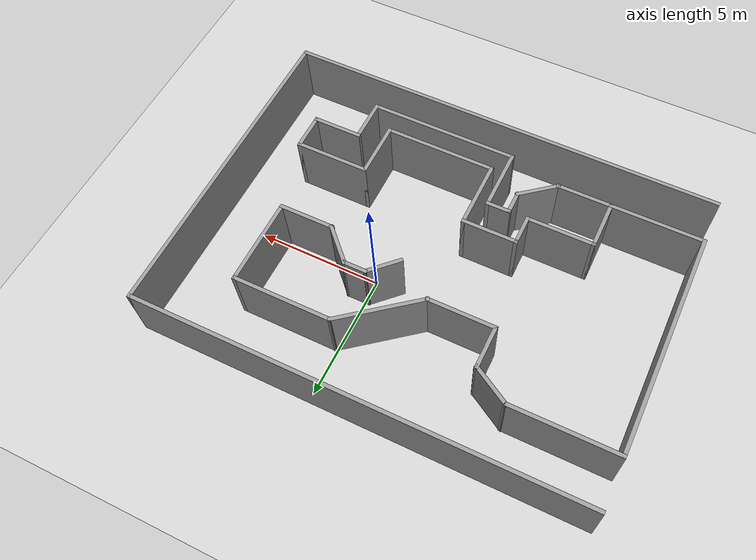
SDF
<?xml version="1.0"?>
<sdf version="1.4">
  <world name="default">

    <gui fullscreen='0'>
      <camera name='user_camera'>
        <pose frame=''>-0.812762 -1.95759 33.0329 0 1.5578 -4.4e-05</pose>
        <view_controller>orbit</view_controller>
        <projection_type>perspective</projection_type>
      </camera>
    </gui>

    <include>
      <uri>model://ground_plane</uri>
    </include>

    <include>
      <uri>model://sun</uri>
    </include>

    <include>
	<static>true</static>
	<name>a_maze_ing</name>
        <uri>model://maze</uri>
    </include>

  </world>
</sdf>

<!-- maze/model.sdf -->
<sdf version='1.6'>
  <model name='world'>
    <pose frame=''>-1.90915 -1.00587 0 0 -0 0</pose>
    <link name='Wall_101'>
      <collision name='Wall_101_Collision'>
        <geometry>
          <box>
            <size>3.6251 0.15 2.5</size>
          </box>
        </geometry>
        <pose frame=''>0 0 1.25 0 -0 0</pose>
      </collision>
      <visual name='Wall_101_Visual'>
        <pose frame=''>0 0 1.25 0 -0 0</pose>
        <geometry>
          <box>
            <size>3.6251 0.15 2.5</size>
          </box>
        </geometry>
        <material>
          <script>
            <uri>file://media/materials/scripts/gazebo.material</uri>
            <name>Gazebo/Grey</name>
          </script>
          <ambient>1 1 1 1</ambient>
        </material>
        <meta>
          <layer>0</layer>
        </meta>
      </visual>
      <pose frame=''>0.65218 3.02248 0 0 -0 0.671324</pose>
    </link>
    <link name='Wall_103'>
      <collision name='Wall_103_Collision'>
        <geometry>
          <box>
            <size>1.75 0.15 2.5</size>
          </box>
        </geometry>
        <pose frame=''>0 0 1.25 0 -0 0</pose>
      </collision>
      <visual name='Wall_103_Visual'>
        <pose frame=''>0 0 1.25 0 -0 0</pose>
        <geometry>
          <box>
            <size>1.75 0.15 2.5</size>
          </box>
        </geometry>
        <material>
          <script>
            <uri>file://media/materials/scripts/gazebo.material</uri>
            <name>Gazebo/Grey</name>
          </script>
          <ambient>1 1 1 1</ambient>
        </material>
        <meta>
          <layer>0</layer>
        </meta>
      </visual>
      <pose frame=''>3.19699 1.31897 0 0 -0 2.35619</pose>
    </link>
    <link name='Wall_104'>
      <collision name='Wall_104_Collision'>
        <geometry>
          <box>
            <size>1 0.15 2.5</size>
          </box>
        </geometry>
        <pose frame=''>0 0 1.25 0 -0 0</pose>
      </collision>
      <visual name='Wall_104_Visual'>
        <pose frame=''>0 0 1.25 0 -0 0</pose>
        <geometry>
          <box>
            <size>1 0.15 2.5</size>
          </box>
        </geometry>
        <material>
          <script>
            <uri>file://media/materials/scripts/gazebo.material</uri>
            <name>Gazebo/Grey</name>
          </script>
          <ambient>1 1 1 1</ambient>
        </material>
        <meta>
          <layer>0</layer>
        </meta>
      </visual>
      <pose frame=''>2.20631 1.88465 0 0 -0 3.14159</pose>
    </link>
    <link name='Wall_105'>
      <collision name='Wall_105_Collision'>
        <geometry>
          <box>
            <size>1.5 0.15 2.5</size>
          </box>
        </geometry>
        <pose frame=''>0 0 1.25 0 -0 0</pose>
      </collision>
      <visual name='Wall_105_Visual'>
        <pose frame=''>0 0 1.25 0 -0 0</pose>
        <geometry>
          <box>
            <size>1.5 0.15 2.5</size>
          </box>
        </geometry>
        <material>
          <script>
            <uri>file://media/materials/scripts/gazebo.material</uri>
            <name>Gazebo/Grey</name>
          </script>
          <ambient>1 1 1 1</ambient>
        </material>
        <meta>
          <layer>0</layer>
        </meta>
      </visual>
      <pose frame=''>1.30401 1.40735 0 0 0 -2.35619</pose>
    </link>
    <link name='Wall_35'>
      <collision name='Wall_35_Collision'>
        <geometry>
          <box>
            <size>17.75 0.15 2.5</size>
          </box>
        </geometry>
        <pose frame=''>0 0 1.25 0 -0 0</pose>
      </collision>
      <visual name='Wall_35_Visual'>
        <pose frame=''>0 0 1.25 0 -0 0</pose>
        <geometry>
          <box>
            <size>17.75 0.15 2.5</size>
          </box>
        </geometry>
        <material>
          <script>
            <uri>file://media/materials/scripts/gazebo.material</uri>
            <name>Gazebo/Grey</name>
          </script>
          <ambient>1 1 1 1</ambient>
        </material>
        <meta>
          <layer>0</layer>
        </meta>
      </visual>
      <pose frame=''>0.010591 6.3 0 0 -0 0</pose>
    </link>
    <link name='Wall_36'>
      <collision name='Wall_36_Collision'>
        <geometry>
          <box>
            <size>12.75 0.15 2.5</size>
          </box>
        </geometry>
        <pose frame=''>0 0 1.25 0 -0 0</pose>
      </collision>
      <visual name='Wall_36_Visual'>
        <pose frame=''>0 0 1.25 0 -0 0</pose>
        <geometry>
          <box>
            <size>12.75 0.15 2.5</size>
          </box>
        </geometry>
        <material>
          <script>
            <uri>file://media/materials/scripts/gazebo.material</uri>
            <name>Gazebo/Grey</name>
          </script>
          <ambient>1 1 1 1</ambient>
        </material>
        <meta>
          <layer>0</layer>
        </meta>
      </visual>
      <pose frame=''>8.81059 0 0 0 0 -1.5708</pose>
    </link>
    <link name='Wall_37'>
      <collision name='Wall_37_Collision'>
        <geometry>
          <box>
            <size>17.75 0.15 2.5</size>
          </box>
        </geometry>
        <pose frame=''>0 0 1.25 0 -0 0</pose>
      </collision>
      <visual name='Wall_37_Visual'>
        <pose frame=''>0 0 1.25 0 -0 0</pose>
        <geometry>
          <box>
            <size>17.75 0.15 2.5</size>
          </box>
        </geometry>
        <material>
          <script>
            <uri>file://media/materials/scripts/gazebo.material</uri>
            <name>Gazebo/Grey</name>
          </script>
          <ambient>1 1 1 1</ambient>
        </material>
        <meta>
          <layer>0</layer>
        </meta>
      </visual>
      <pose frame=''>0.010591 -6.3 0 0 -0 3.14159</pose>
    </link>
    <link name='Wall_47'>
      <collision name='Wall_47_Collision'>
        <geometry>
          <box>
            <size>4 0.15 2.5</size>
          </box>
        </geometry>
        <pose frame=''>0 0 1.25 0 -0 0</pose>
      </collision>
      <visual name='Wall_47_Visual'>
        <pose frame=''>0 0 1.25 0 -0 0</pose>
        <geometry>
          <box>
            <size>4 0.15 2.5</size>
          </box>
        </geometry>
        <material>
          <script>
            <uri>file://media/materials/scripts/gazebo.material</uri>
            <name>Gazebo/Grey</name>
          </script>
          <ambient>1 1 1 1</ambient>
        </material>
        <meta>
          <layer>0</layer>
        </meta>
      </visual>
      <pose frame=''>3.93768 4.10328 0 0 -0 0</pose>
    </link>
    <link name='Wall_53'>
      <collision name='Wall_53_Collision'>
        <geometry>
          <box>
            <size>3.5 0.15 2.5</size>
          </box>
        </geometry>
        <pose frame=''>0 0 1.25 0 -0 0</pose>
      </collision>
      <visual name='Wall_53_Visual'>
        <pose frame=''>0 0 1.25 0 -0 0</pose>
        <geometry>
          <box>
            <size>3.5 0.15 2.5</size>
          </box>
        </geometry>
        <material>
          <script>
            <uri>file://media/materials/scripts/gazebo.material</uri>
            <name>Gazebo/Grey</name>
          </script>
          <ambient>1 1 1 1</ambient>
        </material>
        <meta>
          <layer>0</layer>
        </meta>
      </visual>
      <pose frame=''>5.86268 2.42828 0 0 0 -1.5708</pose>
    </link>
    <link name='Wall_54'>
      <collision name='Wall_54_Collision'>
        <geometry>
          <box>
            <size>2.25 0.15 2.5</size>
          </box>
        </geometry>
        <pose frame=''>0 0 1.25 0 -0 0</pose>
      </collision>
      <visual name='Wall_54_Visual'>
        <pose frame=''>0 0 1.25 0 -0 0</pose>
        <geometry>
          <box>
            <size>2.25 0.15 2.5</size>
          </box>
        </geometry>
        <material>
          <script>
            <uri>file://media/materials/scripts/gazebo.material</uri>
            <name>Gazebo/Grey</name>
          </script>
          <ambient>1 1 1 1</ambient>
        </material>
        <meta>
          <layer>0</layer>
        </meta>
      </visual>
      <pose frame=''>4.81268 0.75328 0 0 -0 3.14159</pose>
    </link>
    <link name='Wall_57'>
      <collision name='Wall_57_Collision'>
        <geometry>
          <box>
            <size>3.75 0.15 2.5</size>
          </box>
        </geometry>
        <pose frame=''>0 0 1.25 0 -0 0</pose>
      </collision>
      <visual name='Wall_57_Visual'>
        <pose frame=''>0 0 1.25 0 -0 0</pose>
        <geometry>
          <box>
            <size>3.75 0.15 2.5</size>
          </box>
        </geometry>
        <material>
          <script>
            <uri>file://media/materials/scripts/gazebo.material</uri>
            <name>Gazebo/Grey</name>
          </script>
          <ambient>1 1 1 1</ambient>
        </material>
        <meta>
          <layer>0</layer>
        </meta>
      </visual>
      <pose frame=''>-7.01059 -4.50831 0 0 -0 0</pose>
    </link>
    <link name='Wall_58'>
      <collision name='Wall_58_Collision'>
        <geometry>
          <box>
            <size>2 0.15 2.5</size>
          </box>
        </geometry>
        <pose frame=''>0 0 1.25 0 -0 0</pose>
      </collision>
      <visual name='Wall_58_Visual'>
        <pose frame=''>0 0 1.25 0 -0 0</pose>
        <geometry>
          <box>
            <size>2 0.15 2.5</size>
          </box>
        </geometry>
        <material>
          <script>
            <uri>file://media/materials/scripts/gazebo.material</uri>
            <name>Gazebo/Grey</name>
          </script>
          <ambient>1 1 1 1</ambient>
        </material>
        <meta>
          <layer>0</layer>
        </meta>
      </visual>
      <pose frame=''>-5.21059 -3.58331 0 0 -0 1.5708</pose>
    </link>
    <link name='Wall_59'>
      <collision name='Wall_59_Collision'>
        <geometry>
          <box>
            <size>2.75 0.15 2.5</size>
          </box>
        </geometry>
        <pose frame=''>0 0 1.25 0 -0 0</pose>
      </collision>
      <visual name='Wall_59_Visual'>
        <pose frame=''>0 0 1.25 0 -0 0</pose>
        <geometry>
          <box>
            <size>2.75 0.15 2.5</size>
          </box>
        </geometry>
        <material>
          <script>
            <uri>file://media/materials/scripts/gazebo.material</uri>
            <name>Gazebo/Grey</name>
          </script>
          <ambient>1 1 1 1</ambient>
        </material>
        <meta>
          <layer>0</layer>
        </meta>
      </visual>
      <pose frame=''>-3.91059 -2.65831 0 0 -0 0</pose>
    </link>
    <link name='Wall_63'>
      <collision name='Wall_63_Collision'>
        <geometry>
          <box>
            <size>1.25 0.15 2.5</size>
          </box>
        </geometry>
        <pose frame=''>0 0 1.25 0 -0 0</pose>
      </collision>
      <visual name='Wall_63_Visual'>
        <pose frame=''>0 0 1.25 0 -0 0</pose>
        <geometry>
          <box>
            <size>1.25 0.15 2.5</size>
          </box>
        </geometry>
        <material>
          <script>
            <uri>file://media/materials/scripts/gazebo.material</uri>
            <name>Gazebo/Grey</name>
          </script>
          <ambient>1 1 1 1</ambient>
        </material>
        <meta>
          <layer>0</layer>
        </meta>
      </visual>
      <pose frame=''>-2.61059 -2.10831 0 0 -0 1.5708</pose>
    </link>
    <link name='Wall_64'>
      <collision name='Wall_64_Collision'>
        <geometry>
          <box>
            <size>2.25 0.15 2.5</size>
          </box>
        </geometry>
        <pose frame=''>0 0 1.25 0 -0 0</pose>
      </collision>
      <visual name='Wall_64_Visual'>
        <pose frame=''>0 0 1.25 0 -0 0</pose>
        <geometry>
          <box>
            <size>2.25 0.15 2.5</size>
          </box>
        </geometry>
        <material>
          <script>
            <uri>file://media/materials/scripts/gazebo.material</uri>
            <name>Gazebo/Grey</name>
          </script>
          <ambient>1 1 1 1</ambient>
        </material>
        <meta>
          <layer>0</layer>
        </meta>
      </visual>
      <pose frame=''>-1.56059 -1.55831 0 0 -0 0</pose>
    </link>
    <link name='Wall_65'>
      <collision name='Wall_65_Collision'>
        <geometry>
          <box>
            <size>2.75 0.15 2.5</size>
          </box>
        </geometry>
        <pose frame=''>0 0 1.25 0 -0 0</pose>
      </collision>
      <visual name='Wall_65_Visual'>
        <pose frame=''>0 0 1.25 0 -0 0</pose>
        <geometry>
          <box>
            <size>2.75 0.15 2.5</size>
          </box>
        </geometry>
        <material>
          <script>
            <uri>file://media/materials/scripts/gazebo.material</uri>
            <name>Gazebo/Grey</name>
          </script>
          <ambient>1 1 1 1</ambient>
        </material>
        <meta>
          <layer>0</layer>
        </meta>
      </visual>
      <pose frame=''>-0.510591 -2.85831 0 0 0 -1.5708</pose>
    </link>
    <link name='Wall_66'>
      <collision name='Wall_66_Collision'>
        <geometry>
          <box>
            <size>4.5 0.15 2.5</size>
          </box>
        </geometry>
        <pose frame=''>0 0 1.25 0 -0 0</pose>
      </collision>
      <visual name='Wall_66_Visual'>
        <pose frame=''>0 0 1.25 0 -0 0</pose>
        <geometry>
          <box>
            <size>4.5 0.15 2.5</size>
          </box>
        </geometry>
        <material>
          <script>
            <uri>file://media/materials/scripts/gazebo.material</uri>
            <name>Gazebo/Grey</name>
          </script>
          <ambient>1 1 1 1</ambient>
        </material>
        <meta>
          <layer>0</layer>
        </meta>
      </visual>
      <pose frame=''>1.66441 -4.15831 0 0 -0 0</pose>
    </link>
    <link name='Wall_67'>
      <collision name='Wall_67_Collision'>
        <geometry>
          <box>
            <size>2.25 0.15 2.5</size>
          </box>
        </geometry>
        <pose frame=''>0 0 1.25 0 -0 0</pose>
      </collision>
      <visual name='Wall_67_Visual'>
        <pose frame=''>0 0 1.25 0 -0 0</pose>
        <geometry>
          <box>
            <size>2.25 0.15 2.5</size>
          </box>
        </geometry>
        <material>
          <script>
            <uri>file://media/materials/scripts/gazebo.material</uri>
            <name>Gazebo/Grey</name>
          </script>
          <ambient>1 1 1 1</ambient>
        </material>
        <meta>
          <layer>0</layer>
        </meta>
      </visual>
      <pose frame=''>3.83941 -3.10831 0 0 -0 1.5708</pose>
    </link>
    <link name='Wall_68'>
      <collision name='Wall_68_Collision'>
        <geometry>
          <box>
            <size>3 0.15 2.5</size>
          </box>
        </geometry>
        <pose frame=''>0 0 1.25 0 -0 0</pose>
      </collision>
      <visual name='Wall_68_Visual'>
        <pose frame=''>0 0 1.25 0 -0 0</pose>
        <geometry>
          <box>
            <size>3 0.15 2.5</size>
          </box>
        </geometry>
        <material>
          <script>
            <uri>file://media/materials/scripts/gazebo.material</uri>
            <name>Gazebo/Grey</name>
          </script>
          <ambient>1 1 1 1</ambient>
        </material>
        <meta>
          <layer>0</layer>
        </meta>
      </visual>
      <pose frame=''>5.26441 -2.05831 0 0 -0 0</pose>
    </link>
    <link name='Wall_69'>
      <collision name='Wall_69_Collision'>
        <geometry>
          <box>
            <size>1.5 0.15 2.5</size>
          </box>
        </geometry>
        <pose frame=''>0 0 1.25 0 -0 0</pose>
      </collision>
      <visual name='Wall_69_Visual'>
        <pose frame=''>0 0 1.25 0 -0 0</pose>
        <geometry>
          <box>
            <size>1.5 0.15 2.5</size>
          </box>
        </geometry>
        <material>
          <script>
            <uri>file://media/materials/scripts/gazebo.material</uri>
            <name>Gazebo/Grey</name>
          </script>
          <ambient>1 1 1 1</ambient>
        </material>
        <meta>
          <layer>0</layer>
        </meta>
      </visual>
      <pose frame=''>6.68941 -2.73331 0 0 0 -1.5708</pose>
    </link>
    <link name='Wall_70'>
      <collision name='Wall_70_Collision'>
        <geometry>
          <box>
            <size>2 0.15 2.5</size>
          </box>
        </geometry>
        <pose frame=''>0 0 1.25 0 -0 0</pose>
      </collision>
      <visual name='Wall_70_Visual'>
        <pose frame=''>0 0 1.25 0 -0 0</pose>
        <geometry>
          <box>
            <size>2 0.15 2.5</size>
          </box>
        </geometry>
        <material>
          <script>
            <uri>file://media/materials/scripts/gazebo.material</uri>
            <name>Gazebo/Grey</name>
          </script>
          <ambient>1 1 1 1</ambient>
        </material>
        <meta>
          <layer>0</layer>
        </meta>
      </visual>
      <pose frame=''>5.76441 -3.40831 0 0 -0 3.14159</pose>
    </link>
    <link name='Wall_71'>
      <collision name='Wall_71_Collision'>
        <geometry>
          <box>
            <size>1.75 0.15 2.5</size>
          </box>
        </geometry>
        <pose frame=''>0 0 1.25 0 -0 0</pose>
      </collision>
      <visual name='Wall_71_Visual'>
        <pose frame=''>0 0 1.25 0 -0 0</pose>
        <geometry>
          <box>
            <size>1.75 0.15 2.5</size>
          </box>
        </geometry>
        <material>
          <script>
            <uri>file://media/materials/scripts/gazebo.material</uri>
            <name>Gazebo/Grey</name>
          </script>
          <ambient>1 1 1 1</ambient>
        </material>
        <meta>
          <layer>0</layer>
        </meta>
      </visual>
      <pose frame=''>4.83941 -4.20831 0 0 0 -1.5708</pose>
    </link>
    <link name='Wall_72'>
      <collision name='Wall_72_Collision'>
        <geometry>
          <box>
            <size>6 0.15 2.5</size>
          </box>
        </geometry>
        <pose frame=''>0 0 1.25 0 -0 0</pose>
      </collision>
      <visual name='Wall_72_Visual'>
        <pose frame=''>0 0 1.25 0 -0 0</pose>
        <geometry>
          <box>
            <size>6 0.15 2.5</size>
          </box>
        </geometry>
        <material>
          <script>
            <uri>file://media/materials/scripts/gazebo.material</uri>
            <name>Gazebo/Grey</name>
          </script>
          <ambient>1 1 1 1</ambient>
        </material>
        <meta>
          <layer>0</layer>
        </meta>
      </visual>
      <pose frame=''>1.91441 -5.00831 0 0 -0 3.14159</pose>
    </link>
    <link name='Wall_73'>
      <collision name='Wall_73_Collision'>
        <geometry>
          <box>
            <size>2.5 0.15 2.5</size>
          </box>
        </geometry>
        <pose frame=''>0 0 1.25 0 -0 0</pose>
      </collision>
      <visual name='Wall_73_Visual'>
        <pose frame=''>0 0 1.25 0 -0 0</pose>
        <geometry>
          <box>
            <size>2.5 0.15 2.5</size>
          </box>
        </geometry>
        <material>
          <script>
            <uri>file://media/materials/scripts/gazebo.material</uri>
            <name>Gazebo/Grey</name>
          </script>
          <ambient>1 1 1 1</ambient>
        </material>
        <meta>
          <layer>0</layer>
        </meta>
      </visual>
      <pose frame=''>-1.01059 -3.83331 0 0 -0 1.5708</pose>
    </link>
    <link name='Wall_74'>
      <collision name='Wall_74_Collision'>
        <geometry>
          <box>
            <size>1 0.15 2.5</size>
          </box>
        </geometry>
        <pose frame=''>0 0 1.25 0 -0 0</pose>
      </collision>
      <visual name='Wall_74_Visual'>
        <pose frame=''>0 0 1.25 0 -0 0</pose>
        <geometry>
          <box>
            <size>1 0.15 2.5</size>
          </box>
        </geometry>
        <material>
          <script>
            <uri>file://media/materials/scripts/gazebo.material</uri>
            <name>Gazebo/Grey</name>
          </script>
          <ambient>1 1 1 1</ambient>
        </material>
        <meta>
          <layer>0</layer>
        </meta>
      </visual>
      <pose frame=''>-1.43559 -2.65831 0 0 -0 3.14159</pose>
    </link>
    <link name='Wall_75'>
      <collision name='Wall_75_Collision'>
        <geometry>
          <box>
            <size>1 0.15 2.5</size>
          </box>
        </geometry>
        <pose frame=''>0 0 1.25 0 -0 0</pose>
      </collision>
      <visual name='Wall_75_Visual'>
        <pose frame=''>0 0 1.25 0 -0 0</pose>
        <geometry>
          <box>
            <size>1 0.15 2.5</size>
          </box>
        </geometry>
        <material>
          <script>
            <uri>file://media/materials/scripts/gazebo.material</uri>
            <name>Gazebo/Grey</name>
          </script>
          <ambient>1 1 1 1</ambient>
        </material>
        <meta>
          <layer>0</layer>
        </meta>
      </visual>
      <pose frame=''>-1.86059 -3.08331 0 0 0 -1.5708</pose>
    </link>
    <link name='Wall_81'>
      <collision name='Wall_81_Collision'>
        <geometry>
          <box>
            <size>2.25 0.15 2.5</size>
          </box>
        </geometry>
        <pose frame=''>0 0 1.25 0 -0 0</pose>
      </collision>
      <visual name='Wall_81_Visual'>
        <pose frame=''>0 0 1.25 0 -0 0</pose>
        <geometry>
          <box>
            <size>2.25 0.15 2.5</size>
          </box>
        </geometry>
        <material>
          <script>
            <uri>file://media/materials/scripts/gazebo.material</uri>
            <name>Gazebo/Grey</name>
          </script>
          <ambient>1 1 1 1</ambient>
        </material>
        <meta>
          <layer>0</layer>
        </meta>
      </visual>
      <pose frame=''>-4.16059 -4.50831 0 0 -0 0</pose>
    </link>
    <link name='Wall_82'>
      <collision name='Wall_82_Collision'>
        <geometry>
          <box>
            <size>1.75078 0.15 2.5</size>
          </box>
        </geometry>
        <pose frame=''>0 0 1.25 0 -0 0</pose>
      </collision>
      <visual name='Wall_82_Visual'>
        <pose frame=''>0 0 1.25 0 -0 0</pose>
        <geometry>
          <box>
            <size>1.75078 0.15 2.5</size>
          </box>
        </geometry>
        <material>
          <script>
            <uri>file://media/materials/scripts/gazebo.material</uri>
            <name>Gazebo/Grey</name>
          </script>
          <ambient>1 1 1 1</ambient>
        </material>
        <meta>
          <layer>0</layer>
        </meta>
      </visual>
      <pose frame=''>-2.48559 -4.00831 0 0 -0 0.674741</pose>
    </link>
    <link name='Wall_84'>
      <collision name='Wall_84_Collision'>
        <geometry>
          <box>
            <size>9 0.15 2.5</size>
          </box>
        </geometry>
        <pose frame=''>0 0 1.25 0 -0 0</pose>
      </collision>
      <visual name='Wall_84_Visual'>
        <pose frame=''>0 0 1.25 0 -0 0</pose>
        <geometry>
          <box>
            <size>9 0.15 2.5</size>
          </box>
        </geometry>
        <material>
          <script>
            <uri>file://media/materials/scripts/gazebo.material</uri>
            <name>Gazebo/Grey</name>
          </script>
          <ambient>1 1 1 1</ambient>
        </material>
        <meta>
          <layer>0</layer>
        </meta>
      </visual>
      <pose frame=''>-8.81059 -0.083313 0 0 -0 1.5708</pose>
    </link>
    <link name='Wall_88'>
      <collision name='Wall_88_Collision'>
        <geometry>
          <box>
            <size>4.26663 0.15 2.5</size>
          </box>
        </geometry>
        <pose frame=''>0 0 1.25 0 -0 0</pose>
      </collision>
      <visual name='Wall_88_Visual'>
        <pose frame=''>0 0 1.25 0 -0 0</pose>
        <geometry>
          <box>
            <size>4.26663 0.15 2.5</size>
          </box>
        </geometry>
        <material>
          <script>
            <uri>file://media/materials/scripts/gazebo.material</uri>
            <name>Gazebo/Grey</name>
          </script>
          <ambient>1 1 1 1</ambient>
        </material>
        <meta>
          <layer>0</layer>
        </meta>
      </visual>
      <pose frame=''>-6.75228 4.34169 0 0 -0 0</pose>
    </link>
    <link name='Wall_96'>
      <collision name='Wall_96_Collision'>
        <geometry>
          <box>
            <size>1.75 0.15 2.5</size>
          </box>
        </geometry>
        <pose frame=''>0 0 1.25 0 -0 0</pose>
      </collision>
      <visual name='Wall_96_Visual'>
        <pose frame=''>0 0 1.25 0 -0 0</pose>
        <geometry>
          <box>
            <size>1.75 0.15 2.5</size>
          </box>
        </geometry>
        <material>
          <script>
            <uri>file://media/materials/scripts/gazebo.material</uri>
            <name>Gazebo/Grey</name>
          </script>
          <ambient>1 1 1 1</ambient>
        </material>
        <meta>
          <layer>0</layer>
        </meta>
      </visual>
      <pose frame=''>-4.00114 3.94169 0 0 0 -0.523599</pose>
    </link>
    <link name='Wall_97'>
      <collision name='Wall_97_Collision'>
        <geometry>
          <box>
            <size>1.75 0.15 2.5</size>
          </box>
        </geometry>
        <pose frame=''>0 0 1.25 0 -0 0</pose>
      </collision>
      <visual name='Wall_97_Visual'>
        <pose frame=''>0 0 1.25 0 -0 0</pose>
        <geometry>
          <box>
            <size>1.75 0.15 2.5</size>
          </box>
        </geometry>
        <material>
          <script>
            <uri>file://media/materials/scripts/gazebo.material</uri>
            <name>Gazebo/Grey</name>
          </script>
          <ambient>1 1 1 1</ambient>
        </material>
        <meta>
          <layer>0</layer>
        </meta>
      </visual>
      <pose frame=''>-3.30832 2.74169 0 0 0 -1.5708</pose>
    </link>
    <link name='Wall_98'>
      <collision name='Wall_98_Collision'>
        <geometry>
          <box>
            <size>2.75 0.15 2.5</size>
          </box>
        </geometry>
        <pose frame=''>0 0 1.25 0 -0 0</pose>
      </collision>
      <visual name='Wall_98_Visual'>
        <pose frame=''>0 0 1.25 0 -0 0</pose>
        <geometry>
          <box>
            <size>2.75 0.15 2.5</size>
          </box>
        </geometry>
        <material>
          <script>
            <uri>file://media/materials/scripts/gazebo.material</uri>
            <name>Gazebo/Grey</name>
          </script>
          <ambient>1 1 1 1</ambient>
        </material>
        <meta>
          <layer>0</layer>
        </meta>
      </visual>
      <pose frame=''>-2.00832 1.94169 0 0 -0 0</pose>
    </link>
    <static>1</static>
  </model>
</sdf>
